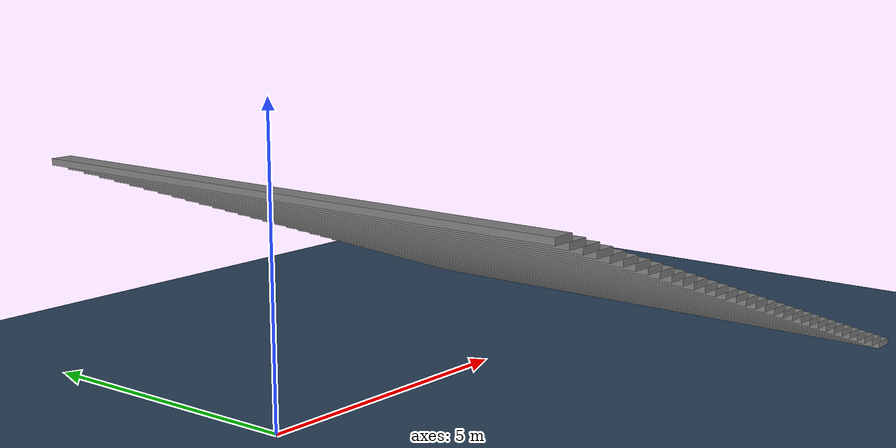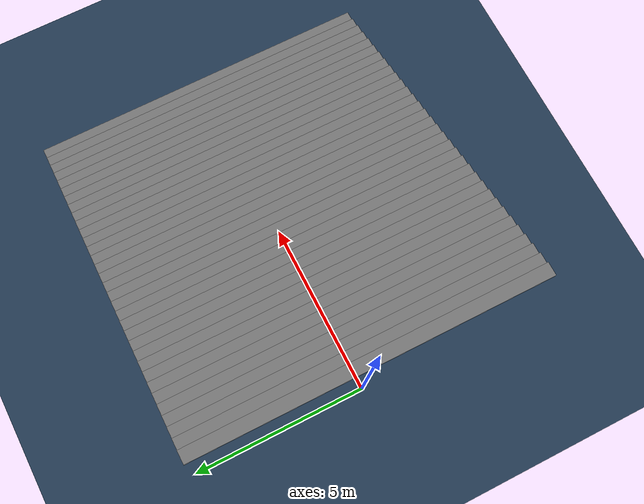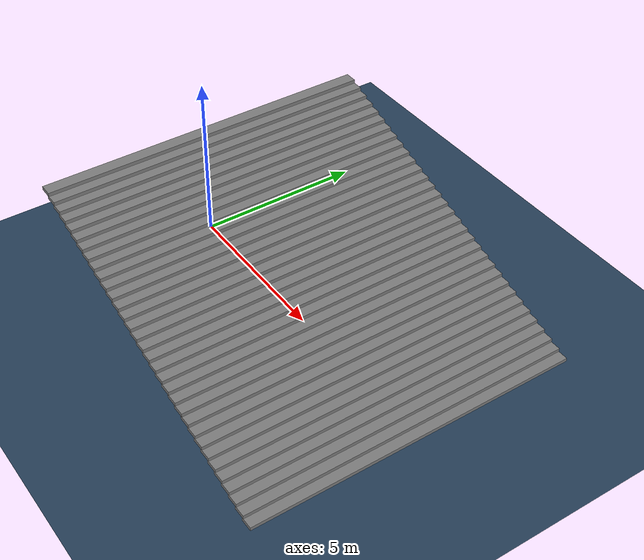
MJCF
<mujoco model="stairs_down_2">
  <!-- Terrain Type: stairs_down, Level: 2, Stairs step height: 0.1100 -->
  <statistic center="0 0 0.1" extent="0.8" />
  <visual>
    <headlight diffuse="0.6 0.6 0.6" ambient="0.3 0.3 0.3" specular="0 0 0" />
    <rgba haze="0.15 0.25 0.35 1" />
    <global azimuth="-130" elevation="-20" />
  </visual>
  <asset>
    <texture type="skybox" builtin="gradient" rgb1="0.3 0.5 0.7" rgb2="0 0 0" width="512" height="3072" />
    <texture type="2d" name="groundplane" builtin="checker" mark="edge" rgb1="0.2 0.3 0.4" rgb2="0.1 0.2 0.3" markrgb="0.8 0.8 0.8" width="300" height="300" />
    <material name="groundplane" texture="groundplane" texuniform="true" texrepeat="5 5" reflectance="0.0" />
  </asset>
  <worldbody>
    <light pos="0 0 1.5" dir="0 0 -1" directional="true" />
    <geom name="floor" size="0 0 0.05" type="plane" material="groundplane" />
    <geom pos="0.155 0.0 3.575" type="box" size="0.186 5.0 0.055" quat="1.0 0.0 0.0 0.0" />
    <geom pos="0.46499999999999997 0.0 3.4650000000000003" type="box" size="0.186 5.0 0.055" quat="1.0 0.0 0.0 0.0" />
    <geom pos="0.7749999999999999 0.0 3.3550000000000004" type="box" size="0.186 5.0 0.055" quat="1.0 0.0 0.0 0.0" />
    <geom pos="1.085 0.0 3.2450000000000006" type="box" size="0.186 5.0 0.055" quat="1.0 0.0 0.0 0.0" />
    <geom pos="1.395 0.0 3.1350000000000007" type="box" size="0.186 5.0 0.055" quat="1.0 0.0 0.0 0.0" />
    <geom pos="1.705 0.0 3.025000000000001" type="box" size="0.186 5.0 0.055" quat="1.0 0.0 0.0 0.0" />
    <geom pos="2.015 0.0 2.915000000000001" type="box" size="0.186 5.0 0.055" quat="1.0 0.0 0.0 0.0" />
    <geom pos="2.325 0.0 2.805000000000001" type="box" size="0.186 5.0 0.055" quat="1.0 0.0 0.0 0.0" />
    <geom pos="2.6350000000000002 0.0 2.695000000000001" type="box" size="0.186 5.0 0.055" quat="1.0 0.0 0.0 0.0" />
    <geom pos="2.9450000000000003 0.0 2.5850000000000013" type="box" size="0.186 5.0 0.055" quat="1.0 0.0 0.0 0.0" />
    <geom pos="3.2550000000000003 0.0 2.4750000000000014" type="box" size="0.186 5.0 0.055" quat="1.0 0.0 0.0 0.0" />
    <geom pos="3.5650000000000004 0.0 2.3650000000000015" type="box" size="0.186 5.0 0.055" quat="1.0 0.0 0.0 0.0" />
    <geom pos="3.8750000000000004 0.0 2.2550000000000017" type="box" size="0.186 5.0 0.055" quat="1.0 0.0 0.0 0.0" />
    <geom pos="4.1850000000000005 0.0 2.145000000000002" type="box" size="0.186 5.0 0.055" quat="1.0 0.0 0.0 0.0" />
    <geom pos="4.495 0.0 2.035000000000002" type="box" size="0.186 5.0 0.055" quat="1.0 0.0 0.0 0.0" />
    <geom pos="4.805 0.0 1.9250000000000018" type="box" size="0.186 5.0 0.055" quat="1.0 0.0 0.0 0.0" />
    <geom pos="5.114999999999999 0.0 1.8150000000000017" type="box" size="0.186 5.0 0.055" quat="1.0 0.0 0.0 0.0" />
    <geom pos="5.424999999999999 0.0 1.7050000000000016" type="box" size="0.186 5.0 0.055" quat="1.0 0.0 0.0 0.0" />
    <geom pos="5.7349999999999985 0.0 1.5950000000000015" type="box" size="0.186 5.0 0.055" quat="1.0 0.0 0.0 0.0" />
    <geom pos="6.044999999999998 0.0 1.4850000000000014" type="box" size="0.186 5.0 0.055" quat="1.0 0.0 0.0 0.0" />
    <geom pos="6.354999999999998 0.0 1.3750000000000013" type="box" size="0.186 5.0 0.055" quat="1.0 0.0 0.0 0.0" />
    <geom pos="6.664999999999997 0.0 1.2650000000000012" type="box" size="0.186 5.0 0.055" quat="1.0 0.0 0.0 0.0" />
    <geom pos="6.974999999999997 0.0 1.1550000000000011" type="box" size="0.186 5.0 0.055" quat="1.0 0.0 0.0 0.0" />
    <geom pos="7.284999999999997 0.0 1.045000000000001" type="box" size="0.186 5.0 0.055" quat="1.0 0.0 0.0 0.0" />
    <geom pos="7.594999999999996 0.0 0.935000000000001" type="box" size="0.186 5.0 0.055" quat="1.0 0.0 0.0 0.0" />
    <geom pos="7.904999999999996 0.0 0.8250000000000011" type="box" size="0.186 5.0 0.055" quat="1.0 0.0 0.0 0.0" />
    <geom pos="8.214999999999996 0.0 0.7150000000000011" type="box" size="0.186 5.0 0.055" quat="1.0 0.0 0.0 0.0" />
    <geom pos="8.524999999999997 0.0 0.6050000000000011" type="box" size="0.186 5.0 0.055" quat="1.0 0.0 0.0 0.0" />
    <geom pos="8.834999999999997 0.0 0.4950000000000011" type="box" size="0.186 5.0 0.055" quat="1.0 0.0 0.0 0.0" />
    <geom pos="9.144999999999998 0.0 0.3850000000000011" type="box" size="0.186 5.0 0.055" quat="1.0 0.0 0.0 0.0" />
    <geom pos="9.454999999999998 0.0 0.27500000000000113" type="box" size="0.186 5.0 0.055" quat="1.0 0.0 0.0 0.0" />
    <geom pos="9.764999999999999 0.0 0.16500000000000115" type="box" size="0.186 5.0 0.055" quat="1.0 0.0 0.0 0.0" />
    <geom pos="10.075 0.0 0.055000000000001145" type="box" size="0.186 5.0 0.055" quat="1.0 0.0 0.0 0.0" />
  </worldbody>
</mujoco>
